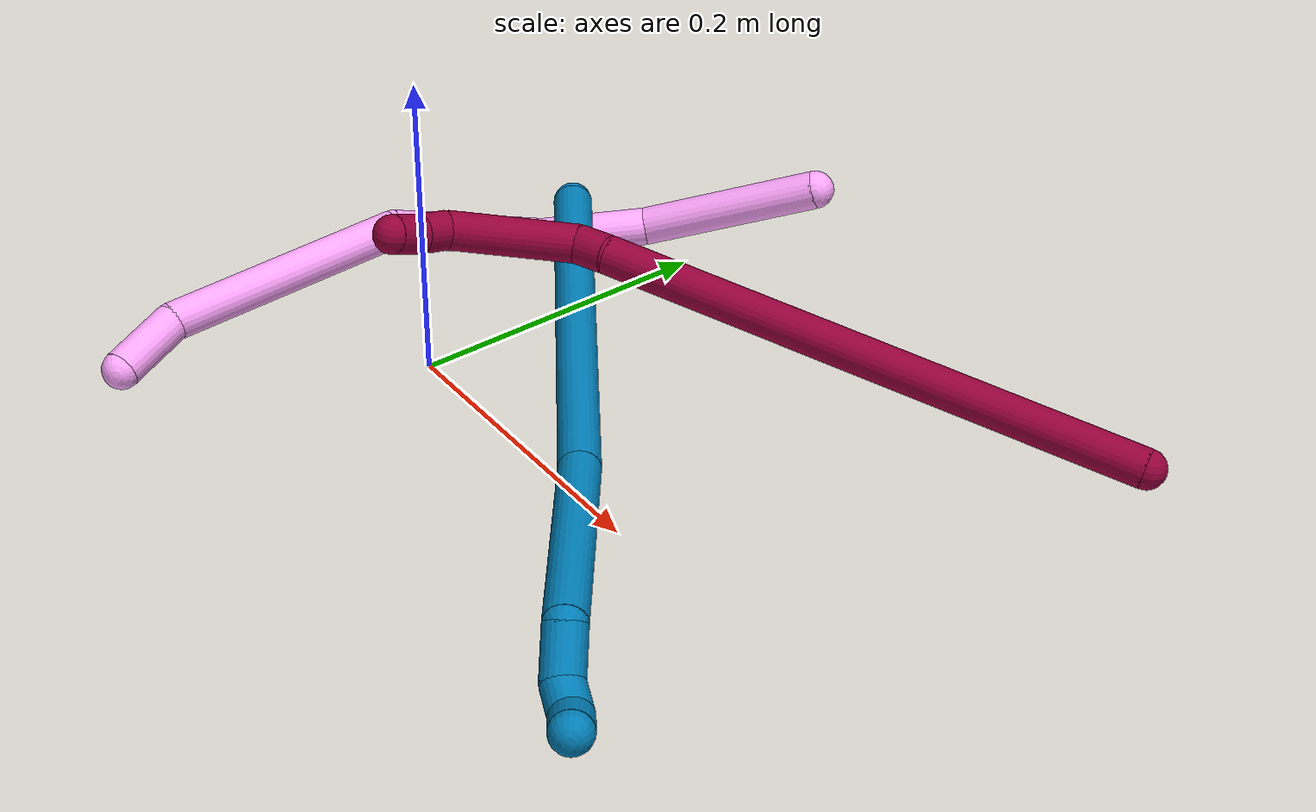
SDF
<sdf version="1.7">
 <world name="default">
  <model name="4">
   <static>0</static>
   <link name="4">
    <collision name="collision-cylinder-e_1_1_4">
     <pose>0.01887 -0.056526 -0.007045 1.69479 0.319893 0.361373</pose>
     <geometry><cylinder><radius>0.0125</radius><length>0.120016</length></cylinder></geometry>
     <surface>
      <friction><ode><mu>1.16</mu><mu2>1.16</mu2><slip1>0</slip1><slip2>0</slip2></ode></friction>
      <contact><ode><kp>1e+06</kp><kd>1</kd><max_vel>0</max_vel><min_depth>0.001</min_depth></ode></contact>
     </surface>
    </collision>
    <visual name="visual-cylinder-e_1_1_4">
     <pose>0.01887 -0.056526 -0.007045 1.69479 0.319893 0.361373</pose>
     <geometry><cylinder><radius>0.0125</radius><length>0.120016</length></cylinder></geometry>
     <material><ambient>1 0.65098 0.996078 1</ambient></material>
    </visual>
    <collision name="collision-cylinder-e_2_4_5">
     <pose>0.039796 -0.146869 -0.003384 1.26418 0.057889 0.042399</pose>
     <geometry><cylinder><radius>0.0125</radius><length>0.07106</length></cylinder></geometry>
     <surface>
      <friction><ode><mu>1.16</mu><mu2>1.16</mu2><slip1>0</slip1><slip2>0</slip2></ode></friction>
      <contact><ode><kp>1e+06</kp><kd>1</kd><max_vel>0</max_vel><min_depth>0.001</min_depth></ode></contact>
     </surface>
    </collision>
    <visual name="visual-cylinder-e_2_4_5">
     <pose>0.039796 -0.146869 -0.003384 1.26418 0.057889 0.042399</pose>
     <geometry><cylinder><radius>0.0125</radius><length>0.07106</length></cylinder></geometry>
     <material><ambient>1 0.65098 0.996078 1</ambient></material>
    </visual>
    <collision name="collision-cylinder-e_3_5_6">
     <pose>0.033837 -0.226234 0.029217 1.12273 -0.157285 -0.099032</pose>
     <geometry><cylinder><radius>0.0125</radius><length>0.102341</length></cylinder></geometry>
     <surface>
      <friction><ode><mu>1.16</mu><mu2>1.16</mu2><slip1>0</slip1><slip2>0</slip2></ode></friction>
      <contact><ode><kp>1e+06</kp><kd>1</kd><max_vel>0</max_vel><min_depth>0.001</min_depth></ode></contact>
     </surface>
    </collision>
    <visual name="visual-cylinder-e_3_5_6">
     <pose>0.033837 -0.226234 0.029217 1.12273 -0.157285 -0.099032</pose>
     <geometry><cylinder><radius>0.0125</radius><length>0.102341</length></cylinder></geometry>
     <material><ambient>1 0.65098 0.996078 1</ambient></material>
    </visual>
    <collision name="collision-cylinder-e_4_6_7">
     <pose>0.043603 -0.333094 0.098152 0.916346 0.226161 0.111898</pose>
     <geometry><cylinder><radius>0.0125</radius><length>0.158592</length></cylinder></geometry>
     <surface>
      <friction><ode><mu>1.16</mu><mu2>1.16</mu2><slip1>0</slip1><slip2>0</slip2></ode></friction>
      <contact><ode><kp>1e+06</kp><kd>1</kd><max_vel>0</max_vel><min_depth>0.001</min_depth></ode></contact>
     </surface>
    </collision>
    <visual name="visual-cylinder-e_4_6_7">
     <pose>0.043603 -0.333094 0.098152 0.916346 0.226161 0.111898</pose>
     <geometry><cylinder><radius>0.0125</radius><length>0.158592</length></cylinder></geometry>
     <material><ambient>1 0.65098 0.996078 1</ambient></material>
    </visual>
    <collision name="collision-cylinder-e_5_7_2">
     <pose>0.070079 -0.405257 0.164747 0.506662 0.37078 0.097031</pose>
     <geometry><cylinder><radius>0.0125</radius><length>0.047992</length></cylinder></geometry>
     <surface>
      <friction><ode><mu>1.16</mu><mu2>1.16</mu2><slip1>0</slip1><slip2>0</slip2></ode></friction>
      <contact><ode><kp>1e+06</kp><kd>1</kd><max_vel>0</max_vel><min_depth>0.001</min_depth></ode></contact>
     </surface>
    </collision>
    <visual name="visual-cylinder-e_5_7_2">
     <pose>0.070079 -0.405257 0.164747 0.506662 0.37078 0.097031</pose>
     <geometry><cylinder><radius>0.0125</radius><length>0.047992</length></cylinder></geometry>
     <material><ambient>1 0.65098 0.996078 1</ambient></material>
    </visual>
    <collision name="collision-sphere-2">
     <pose>0.078774 -0.41611 0.184303 0 -0 0</pose>
     <geometry><sphere><radius>0.0125</radius></sphere></geometry>
     <surface>
      <friction><ode><mu>1.16</mu><mu2>1.16</mu2><slip1>0</slip1><slip2>0</slip2></ode></friction>
      <contact><ode><kp>1e+06</kp><kd>1</kd><max_vel>0</max_vel><min_depth>0.001</min_depth></ode></contact>
     </surface>
    </collision>
    <visual name="visual-sphere-2">
     <pose>0.078774 -0.41611 0.184303 0 -0 0</pose>
     <geometry><sphere><radius>0.0125</radius></sphere></geometry>
     <material><ambient>1 0.65098 0.996078 1</ambient></material>
    </visual>
    <collision name="collision-sphere-7">
     <pose>0.061384 -0.394404 0.145192 0 -0 0</pose>
     <geometry><sphere><radius>0.0125</radius></sphere></geometry>
     <surface>
      <friction><ode><mu>1.16</mu><mu2>1.16</mu2><slip1>0</slip1><slip2>0</slip2></ode></friction>
      <contact><ode><kp>1e+06</kp><kd>1</kd><max_vel>0</max_vel><min_depth>0.001</min_depth></ode></contact>
     </surface>
    </collision>
    <visual name="visual-sphere-7">
     <pose>0.061384 -0.394404 0.145192 0 -0 0</pose>
     <geometry><sphere><radius>0.0125</radius></sphere></geometry>
     <material><ambient>1 0.65098 0.996078 1</ambient></material>
    </visual>
    <collision name="collision-sphere-6">
     <pose>0.025822 -0.271784 0.051112 0 -0 0</pose>
     <geometry><sphere><radius>0.0125</radius></sphere></geometry>
     <surface>
      <friction><ode><mu>1.16</mu><mu2>1.16</mu2><slip1>0</slip1><slip2>0</slip2></ode></friction>
      <contact><ode><kp>1e+06</kp><kd>1</kd><max_vel>0</max_vel><min_depth>0.001</min_depth></ode></contact>
     </surface>
    </collision>
    <visual name="visual-sphere-6">
     <pose>0.025822 -0.271784 0.051112 0 -0 0</pose>
     <geometry><sphere><radius>0.0125</radius></sphere></geometry>
     <material><ambient>1 0.65098 0.996078 1</ambient></material>
    </visual>
    <collision name="collision-sphere-5">
     <pose>0.041852 -0.180685 0.007322 0 -0 0</pose>
     <geometry><sphere><radius>0.0125</radius></sphere></geometry>
     <surface>
      <friction><ode><mu>1.16</mu><mu2>1.16</mu2><slip1>0</slip1><slip2>0</slip2></ode></friction>
      <contact><ode><kp>1e+06</kp><kd>1</kd><max_vel>0</max_vel><min_depth>0.001</min_depth></ode></contact>
     </surface>
    </collision>
    <visual name="visual-sphere-5">
     <pose>0.041852 -0.180685 0.007322 0 -0 0</pose>
     <geometry><sphere><radius>0.0125</radius></sphere></geometry>
     <material><ambient>1 0.65098 0.996078 1</ambient></material>
    </visual>
    <collision name="collision-sphere-1">
     <geometry><sphere><radius>0.0125</radius></sphere></geometry>
     <surface>
      <friction><ode><mu>1.16</mu><mu2>1.16</mu2><slip1>0</slip1><slip2>0</slip2></ode></friction>
      <contact><ode><kp>1e+06</kp><kd>1</kd><max_vel>0</max_vel><min_depth>0.001</min_depth></ode></contact>
     </surface>
    </collision>
    <visual name="visual-sphere-1">
     <geometry><sphere><radius>0.0125</radius></sphere></geometry>
     <material><ambient>1 0.65098 0.996078 1</ambient></material>
    </visual>
    <collision name="collision-sphere-4">
     <pose>0.037741 -0.113053 -0.01409 0 -0 0</pose>
     <geometry><sphere><radius>0.0125</radius></sphere></geometry>
     <surface>
      <friction><ode><mu>1.16</mu><mu2>1.16</mu2><slip1>0</slip1><slip2>0</slip2></ode></friction>
      <contact><ode><kp>1e+06</kp><kd>1</kd><max_vel>0</max_vel><min_depth>0.001</min_depth></ode></contact>
     </surface>
    </collision>
    <visual name="visual-sphere-4">
     <pose>0.037741 -0.113053 -0.01409 0 -0 0</pose>
     <geometry><sphere><radius>0.0125</radius></sphere></geometry>
     <material><ambient>1 0.65098 0.996078 1</ambient></material>
    </visual>
    <inertial>
     <pose>0.037668 -0.225297 0.050754 0 -0 0</pose>
     <mass>0.5</mass>
     <inertia>
      <ixx>0.000681</ixx>
      <ixy>0</ixy>
      <ixz>0</ixz>
      <iyy>0.00032</iyy>
      <iyz>0</iyz>
      <izz>0.000422</izz>
     </inertia>
    </inertial>
   </link>
   <pose>0.043945 0.274075 0.052198 0.02542 1.35305 -0.72007</pose>
  </model>
  <model name="8">
   <static>0</static>
   <link name="8">
    <collision name="collision-cylinder-e_1_1_4">
     <pose>-0.092065 -0.149811 0.010408 1.50143 -0.549968 -0.514746</pose>
     <geometry><cylinder><radius>0.0125</radius><length>0.352294</length></cylinder></geometry>
     <surface>
      <friction><ode><mu>1.16</mu><mu2>1.16</mu2><slip1>0</slip1><slip2>0</slip2></ode></friction>
      <contact><ode><kp>1e+06</kp><kd>1</kd><max_vel>0</max_vel><min_depth>0.001</min_depth></ode></contact>
     </surface>
    </collision>
    <visual name="visual-cylinder-e_1_1_4">
     <pose>-0.092065 -0.149811 0.010408 1.50143 -0.549968 -0.514746</pose>
     <geometry><cylinder><radius>0.0125</radius><length>0.352294</length></cylinder></geometry>
     <material><ambient>0.584314 0 0.227451 1</ambient></material>
    </visual>
    <collision name="collision-cylinder-e_2_4_5">
     <pose>-0.191704 -0.308276 0.020066 1.65726 -0.717143 -0.775904</pose>
     <geometry><cylinder><radius>0.0125</radius><length>0.023049</length></cylinder></geometry>
     <surface>
      <friction><ode><mu>1.16</mu><mu2>1.16</mu2><slip1>0</slip1><slip2>0</slip2></ode></friction>
      <contact><ode><kp>1e+06</kp><kd>1</kd><max_vel>0</max_vel><min_depth>0.001</min_depth></ode></contact>
     </surface>
    </collision>
    <visual name="visual-cylinder-e_2_4_5">
     <pose>-0.191704 -0.308276 0.020066 1.65726 -0.717143 -0.775904</pose>
     <geometry><cylinder><radius>0.0125</radius><length>0.023049</length></cylinder></geometry>
     <material><ambient>0.584314 0 0.227451 1</ambient></material>
    </visual>
    <collision name="collision-cylinder-e_3_5_6">
     <pose>-0.203058 -0.357857 0.018538 1.58979 -0.09208 -0.093843</pose>
     <geometry><cylinder><radius>0.0125</radius><length>0.082219</length></cylinder></geometry>
     <surface>
      <friction><ode><mu>1.16</mu><mu2>1.16</mu2><slip1>0</slip1><slip2>0</slip2></ode></friction>
      <contact><ode><kp>1e+06</kp><kd>1</kd><max_vel>0</max_vel><min_depth>0.001</min_depth></ode></contact>
     </surface>
    </collision>
    <visual name="visual-cylinder-e_3_5_6">
     <pose>-0.203058 -0.357857 0.018538 1.58979 -0.09208 -0.093843</pose>
     <geometry><cylinder><radius>0.0125</radius><length>0.082219</length></cylinder></geometry>
     <material><ambient>0.584314 0 0.227451 1</ambient></material>
    </visual>
    <collision name="collision-cylinder-e_4_6_7">
     <pose>-0.20156 -0.407495 0.018131 1.52835 0.544436 0.522842</pose>
     <geometry><cylinder><radius>0.0125</radius><length>0.020381</length></cylinder></geometry>
     <surface>
      <friction><ode><mu>1.16</mu><mu2>1.16</mu2><slip1>0</slip1><slip2>0</slip2></ode></friction>
      <contact><ode><kp>1e+06</kp><kd>1</kd><max_vel>0</max_vel><min_depth>0.001</min_depth></ode></contact>
     </surface>
    </collision>
    <visual name="visual-cylinder-e_4_6_7">
     <pose>-0.20156 -0.407495 0.018131 1.52835 0.544436 0.522842</pose>
     <geometry><cylinder><radius>0.0125</radius><length>0.020381</length></cylinder></geometry>
     <material><ambient>0.584314 0 0.227451 1</ambient></material>
    </visual>
    <collision name="collision-cylinder-e_5_7_2">
     <pose>-0.190289 -0.425241 0.020513 1.35166 0.57458 0.465221</pose>
     <geometry><cylinder><radius>0.0125</radius><length>0.022057</length></cylinder></geometry>
     <surface>
      <friction><ode><mu>1.16</mu><mu2>1.16</mu2><slip1>0</slip1><slip2>0</slip2></ode></friction>
      <contact><ode><kp>1e+06</kp><kd>1</kd><max_vel>0</max_vel><min_depth>0.001</min_depth></ode></contact>
     </surface>
    </collision>
    <visual name="visual-cylinder-e_5_7_2">
     <pose>-0.190289 -0.425241 0.020513 1.35166 0.57458 0.465221</pose>
     <geometry><cylinder><radius>0.0125</radius><length>0.022057</length></cylinder></geometry>
     <material><ambient>0.584314 0 0.227451 1</ambient></material>
    </visual>
    <collision name="collision-sphere-2">
     <pose>-0.184295 -0.434277 0.022526 0 -0 0</pose>
     <geometry><sphere><radius>0.0125</radius></sphere></geometry>
     <surface>
      <friction><ode><mu>1.16</mu><mu2>1.16</mu2><slip1>0</slip1><slip2>0</slip2></ode></friction>
      <contact><ode><kp>1e+06</kp><kd>1</kd><max_vel>0</max_vel><min_depth>0.001</min_depth></ode></contact>
     </surface>
    </collision>
    <visual name="visual-sphere-2">
     <pose>-0.184295 -0.434277 0.022526 0 -0 0</pose>
     <geometry><sphere><radius>0.0125</radius></sphere></geometry>
     <material><ambient>0.584314 0 0.227451 1</ambient></material>
    </visual>
    <collision name="collision-sphere-7">
     <pose>-0.196282 -0.416205 0.018501 0 -0 0</pose>
     <geometry><sphere><radius>0.0125</radius></sphere></geometry>
     <surface>
      <friction><ode><mu>1.16</mu><mu2>1.16</mu2><slip1>0</slip1><slip2>0</slip2></ode></friction>
      <contact><ode><kp>1e+06</kp><kd>1</kd><max_vel>0</max_vel><min_depth>0.001</min_depth></ode></contact>
     </surface>
    </collision>
    <visual name="visual-sphere-7">
     <pose>-0.196282 -0.416205 0.018501 0 -0 0</pose>
     <geometry><sphere><radius>0.0125</radius></sphere></geometry>
     <material><ambient>0.584314 0 0.227451 1</ambient></material>
    </visual>
    <collision name="collision-sphere-6">
     <pose>-0.206839 -0.398786 0.017761 0 -0 0</pose>
     <geometry><sphere><radius>0.0125</radius></sphere></geometry>
     <surface>
      <friction><ode><mu>1.16</mu><mu2>1.16</mu2><slip1>0</slip1><slip2>0</slip2></ode></friction>
      <contact><ode><kp>1e+06</kp><kd>1</kd><max_vel>0</max_vel><min_depth>0.001</min_depth></ode></contact>
     </surface>
    </collision>
    <visual name="visual-sphere-6">
     <pose>-0.206839 -0.398786 0.017761 0 -0 0</pose>
     <geometry><sphere><radius>0.0125</radius></sphere></geometry>
     <material><ambient>0.584314 0 0.227451 1</ambient></material>
    </visual>
    <collision name="collision-sphere-5">
     <pose>-0.199278 -0.316929 0.019316 0 -0 0</pose>
     <geometry><sphere><radius>0.0125</radius></sphere></geometry>
     <surface>
      <friction><ode><mu>1.16</mu><mu2>1.16</mu2><slip1>0</slip1><slip2>0</slip2></ode></friction>
      <contact><ode><kp>1e+06</kp><kd>1</kd><max_vel>0</max_vel><min_depth>0.001</min_depth></ode></contact>
     </surface>
    </collision>
    <visual name="visual-sphere-5">
     <pose>-0.199278 -0.316929 0.019316 0 -0 0</pose>
     <geometry><sphere><radius>0.0125</radius></sphere></geometry>
     <material><ambient>0.584314 0 0.227451 1</ambient></material>
    </visual>
    <collision name="collision-sphere-1">
     <geometry><sphere><radius>0.0125</radius></sphere></geometry>
     <surface>
      <friction><ode><mu>1.16</mu><mu2>1.16</mu2><slip1>0</slip1><slip2>0</slip2></ode></friction>
      <contact><ode><kp>1e+06</kp><kd>1</kd><max_vel>0</max_vel><min_depth>0.001</min_depth></ode></contact>
     </surface>
    </collision>
    <visual name="visual-sphere-1">
     <geometry><sphere><radius>0.0125</radius></sphere></geometry>
     <material><ambient>0.584314 0 0.227451 1</ambient></material>
    </visual>
    <collision name="collision-sphere-4">
     <pose>-0.18413 -0.299623 0.020816 0 -0 0</pose>
     <geometry><sphere><radius>0.0125</radius></sphere></geometry>
     <surface>
      <friction><ode><mu>1.16</mu><mu2>1.16</mu2><slip1>0</slip1><slip2>0</slip2></ode></friction>
      <contact><ode><kp>1e+06</kp><kd>1</kd><max_vel>0</max_vel><min_depth>0.001</min_depth></ode></contact>
     </surface>
    </collision>
    <visual name="visual-sphere-4">
     <pose>-0.18413 -0.299623 0.020816 0 -0 0</pose>
     <geometry><sphere><radius>0.0125</radius></sphere></geometry>
     <material><ambient>0.584314 0 0.227451 1</ambient></material>
    </visual>
    <inertial>
     <pose>-0.123706 -0.213981 0.012951 0 -0 0</pose>
     <mass>0.5</mass>
     <inertia>
      <ixx>0.001213</ixx>
      <ixy>0</ixy>
      <ixz>0</ixz>
      <iyy>-0.000412</iyy>
      <iyz>0</iyz>
      <izz>0.005081</izz>
     </inertia>
    </inertial>
   </link>
   <pose>0.347132 0.27495 0.012641 -0.171488 -0.111556 -0.493085</pose>
  </model>
  <model name="9">
   <static>0</static>
   <link name="9">
    <collision name="collision-cylinder-e_1_1_4">
     <pose>0.027975 0.024166 0.140281 -0.170595 0.194053 -0.016644</pose>
     <geometry><cylinder><radius>0.0125</radius><length>0.29014</length></cylinder></geometry>
     <surface>
      <friction><ode><mu>1.16</mu><mu2>1.16</mu2><slip1>0</slip1><slip2>0</slip2></ode></friction>
      <contact><ode><kp>1e+06</kp><kd>1</kd><max_vel>0</max_vel><min_depth>0.001</min_depth></ode></contact>
     </surface>
    </collision>
    <visual name="visual-cylinder-e_1_1_4">
     <pose>0.027975 0.024166 0.140281 -0.170595 0.194053 -0.016644</pose>
     <geometry><cylinder><radius>0.0125</radius><length>0.29014</length></cylinder></geometry>
     <material><ambient>0 0.490196 0.709804 1</ambient></material>
    </visual>
    <collision name="collision-cylinder-e_2_4_5">
     <pose>0.067672 0.05452 0.348488 -0.090851 0.170195 -0.007755</pose>
     <geometry><cylinder><radius>0.0125</radius><length>0.138415</length></cylinder></geometry>
     <surface>
      <friction><ode><mu>1.16</mu><mu2>1.16</mu2><slip1>0</slip1><slip2>0</slip2></ode></friction>
      <contact><ode><kp>1e+06</kp><kd>1</kd><max_vel>0</max_vel><min_depth>0.001</min_depth></ode></contact>
     </surface>
    </collision>
    <visual name="visual-cylinder-e_2_4_5">
     <pose>0.067672 0.05452 0.348488 -0.090851 0.170195 -0.007755</pose>
     <geometry><cylinder><radius>0.0125</radius><length>0.138415</length></cylinder></geometry>
     <material><ambient>0 0.490196 0.709804 1</ambient></material>
    </visual>
    <collision name="collision-cylinder-e_3_5_6">
     <pose>0.09129 0.064345 0.425656 -0.374845 0.875168 -0.176984</pose>
     <geometry><cylinder><radius>0.0125</radius><length>0.030992</length></cylinder></geometry>
     <surface>
      <friction><ode><mu>1.16</mu><mu2>1.16</mu2><slip1>0</slip1><slip2>0</slip2></ode></friction>
      <contact><ode><kp>1e+06</kp><kd>1</kd><max_vel>0</max_vel><min_depth>0.001</min_depth></ode></contact>
     </surface>
    </collision>
    <visual name="visual-cylinder-e_3_5_6">
     <pose>0.09129 0.064345 0.425656 -0.374845 0.875168 -0.176984</pose>
     <geometry><cylinder><radius>0.0125</radius><length>0.030992</length></cylinder></geometry>
     <material><ambient>0 0.490196 0.709804 1</ambient></material>
    </visual>
    <collision name="collision-cylinder-e_4_6_7">
     <pose>0.1069 0.072281 0.443134 -0.48117 0.380321 -0.094378</pose>
     <geometry><cylinder><radius>0.0125</radius><length>0.020014</length></cylinder></geometry>
     <surface>
      <friction><ode><mu>1.16</mu><mu2>1.16</mu2><slip1>0</slip1><slip2>0</slip2></ode></friction>
      <contact><ode><kp>1e+06</kp><kd>1</kd><max_vel>0</max_vel><min_depth>0.001</min_depth></ode></contact>
     </surface>
    </collision>
    <visual name="visual-cylinder-e_4_6_7">
     <pose>0.1069 0.072281 0.443134 -0.48117 0.380321 -0.094378</pose>
     <geometry><cylinder><radius>0.0125</radius><length>0.020014</length></cylinder></geometry>
     <material><ambient>0 0.490196 0.709804 1</ambient></material>
    </visual>
    <collision name="collision-cylinder-e_5_7_2">
     <pose>0.108993 0.077157 0.461444 -0.057011 -0.159405 0.004555</pose>
     <geometry><cylinder><radius>0.0125</radius><length>0.020438</length></cylinder></geometry>
     <surface>
      <friction><ode><mu>1.16</mu><mu2>1.16</mu2><slip1>0</slip1><slip2>0</slip2></ode></friction>
      <contact><ode><kp>1e+06</kp><kd>1</kd><max_vel>0</max_vel><min_depth>0.001</min_depth></ode></contact>
     </surface>
    </collision>
    <visual name="visual-cylinder-e_5_7_2">
     <pose>0.108993 0.077157 0.461444 -0.057011 -0.159405 0.004555</pose>
     <geometry><cylinder><radius>0.0125</radius><length>0.020438</length></cylinder></geometry>
     <material><ambient>0 0.490196 0.709804 1</ambient></material>
    </visual>
    <collision name="collision-sphere-2">
     <pose>0.107371 0.077731 0.471518 0 -0 0</pose>
     <geometry><sphere><radius>0.0125</radius></sphere></geometry>
     <surface>
      <friction><ode><mu>1.16</mu><mu2>1.16</mu2><slip1>0</slip1><slip2>0</slip2></ode></friction>
      <contact><ode><kp>1e+06</kp><kd>1</kd><max_vel>0</max_vel><min_depth>0.001</min_depth></ode></contact>
     </surface>
    </collision>
    <visual name="visual-sphere-2">
     <pose>0.107371 0.077731 0.471518 0 -0 0</pose>
     <geometry><sphere><radius>0.0125</radius></sphere></geometry>
     <material><ambient>0 0.490196 0.709804 1</ambient></material>
    </visual>
    <collision name="collision-sphere-7">
     <pose>0.110615 0.076582 0.451371 0 -0 0</pose>
     <geometry><sphere><radius>0.0125</radius></sphere></geometry>
     <surface>
      <friction><ode><mu>1.16</mu><mu2>1.16</mu2><slip1>0</slip1><slip2>0</slip2></ode></friction>
      <contact><ode><kp>1e+06</kp><kd>1</kd><max_vel>0</max_vel><min_depth>0.001</min_depth></ode></contact>
     </surface>
    </collision>
    <visual name="visual-sphere-7">
     <pose>0.110615 0.076582 0.451371 0 -0 0</pose>
     <geometry><sphere><radius>0.0125</radius></sphere></geometry>
     <material><ambient>0 0.490196 0.709804 1</ambient></material>
    </visual>
    <collision name="collision-sphere-6">
     <pose>0.103185 0.067981 0.434897 0 -0 0</pose>
     <geometry><sphere><radius>0.0125</radius></sphere></geometry>
     <surface>
      <friction><ode><mu>1.16</mu><mu2>1.16</mu2><slip1>0</slip1><slip2>0</slip2></ode></friction>
      <contact><ode><kp>1e+06</kp><kd>1</kd><max_vel>0</max_vel><min_depth>0.001</min_depth></ode></contact>
     </surface>
    </collision>
    <visual name="visual-sphere-6">
     <pose>0.103185 0.067981 0.434897 0 -0 0</pose>
     <geometry><sphere><radius>0.0125</radius></sphere></geometry>
     <material><ambient>0 0.490196 0.709804 1</ambient></material>
    </visual>
    <collision name="collision-sphere-5">
     <pose>0.079394 0.060708 0.416414 0 -0 0</pose>
     <geometry><sphere><radius>0.0125</radius></sphere></geometry>
     <surface>
      <friction><ode><mu>1.16</mu><mu2>1.16</mu2><slip1>0</slip1><slip2>0</slip2></ode></friction>
      <contact><ode><kp>1e+06</kp><kd>1</kd><max_vel>0</max_vel><min_depth>0.001</min_depth></ode></contact>
     </surface>
    </collision>
    <visual name="visual-sphere-5">
     <pose>0.079394 0.060708 0.416414 0 -0 0</pose>
     <geometry><sphere><radius>0.0125</radius></sphere></geometry>
     <material><ambient>0 0.490196 0.709804 1</ambient></material>
    </visual>
    <collision name="collision-sphere-1">
     <geometry><sphere><radius>0.0125</radius></sphere></geometry>
     <surface>
      <friction><ode><mu>1.16</mu><mu2>1.16</mu2><slip1>0</slip1><slip2>0</slip2></ode></friction>
      <contact><ode><kp>1e+06</kp><kd>1</kd><max_vel>0</max_vel><min_depth>0.001</min_depth></ode></contact>
     </surface>
    </collision>
    <visual name="visual-sphere-1">
     <geometry><sphere><radius>0.0125</radius></sphere></geometry>
     <material><ambient>0 0.490196 0.709804 1</ambient></material>
    </visual>
    <collision name="collision-sphere-4">
     <pose>0.05595 0.048332 0.280562 0 -0 0</pose>
     <geometry><sphere><radius>0.0125</radius></sphere></geometry>
     <surface>
      <friction><ode><mu>1.16</mu><mu2>1.16</mu2><slip1>0</slip1><slip2>0</slip2></ode></friction>
      <contact><ode><kp>1e+06</kp><kd>1</kd><max_vel>0</max_vel><min_depth>0.001</min_depth></ode></contact>
     </surface>
    </collision>
    <visual name="visual-sphere-4">
     <pose>0.05595 0.048332 0.280562 0 -0 0</pose>
     <geometry><sphere><radius>0.0125</radius></sphere></geometry>
     <material><ambient>0 0.490196 0.709804 1</ambient></material>
    </visual>
    <inertial>
     <pose>0.04936 0.039152 0.240859 0 -0 0</pose>
     <mass>0.5</mass>
     <inertia>
      <ixx>0.002209</ixx>
      <ixy>0</ixy>
      <ixz>0</ixz>
      <iyy>0.00222</iyy>
      <iyz>0</iyz>
      <izz>-0.000762</izz>
     </inertia>
    </inertial>
   </link>
   <pose>-0.056919 0.14984 0.037559 -0.811471 1.20454 -1.5532</pose>
  </model>
 </world>
</sdf>
